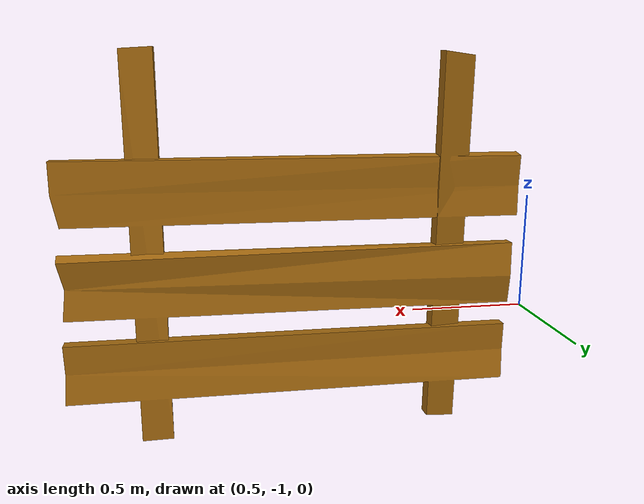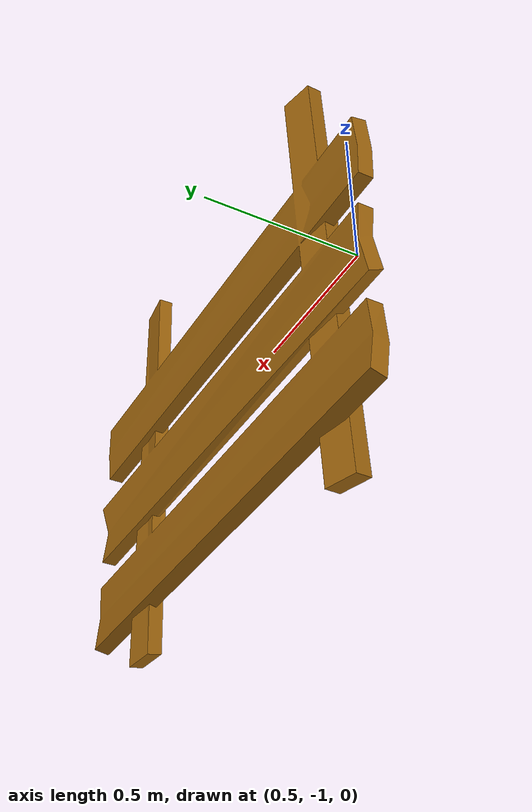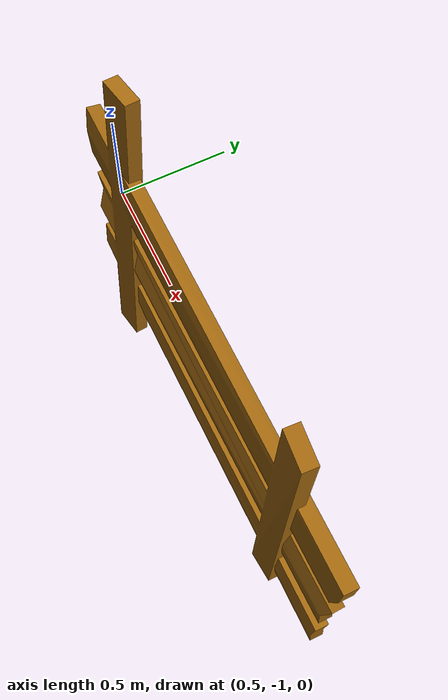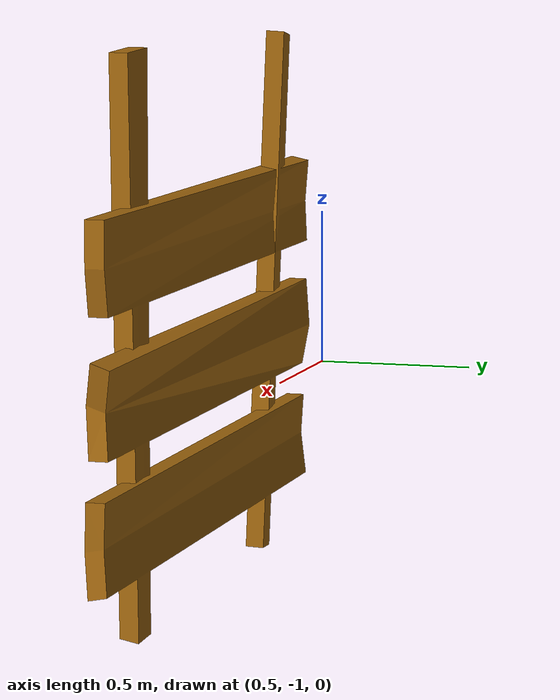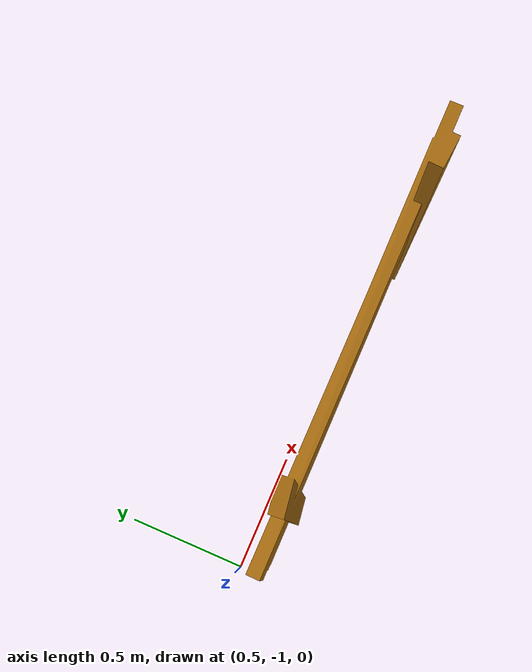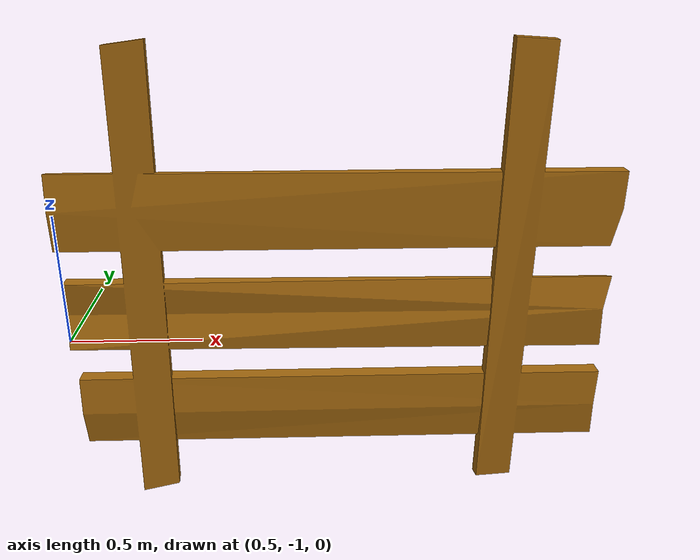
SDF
<?xml version="1.0" ?>
<sdf version="1.5">
  <model name="wooden_fence">
    <static>true</static>
    <link name="link">
      <pose>0 0 0 0 0 0</pose>
      <inertial>
        <mass>100.0</mass>
        <inertia>
          <ixx>192.33</ixx>
          <ixy>0</ixy>
          <ixz>0</ixz>
          <iyy>12.33</iyy>
          <iyz>0</iyz>
          <izz>204</izz>
        </inertia>
      </inertial>
      <collision name="collision">
        <pose>0 0 0. 0 0 0</pose>
        <geometry>
          <mesh>
            <uri>model://wooden_fence/meshes/fence.dae</uri>
            <scale>1 1 1</scale>
          </mesh>
        </geometry>
      </collision>
      <visual name="visual">
        <pose>0 0 0 0 0 0</pose>
        <geometry>
          <mesh>
            <uri>model://wooden_fence/meshes/fence.dae</uri>
            <scale>1 1 1</scale>
          </mesh>
        </geometry>
      </visual>
    </link>
  </model>
</sdf>
